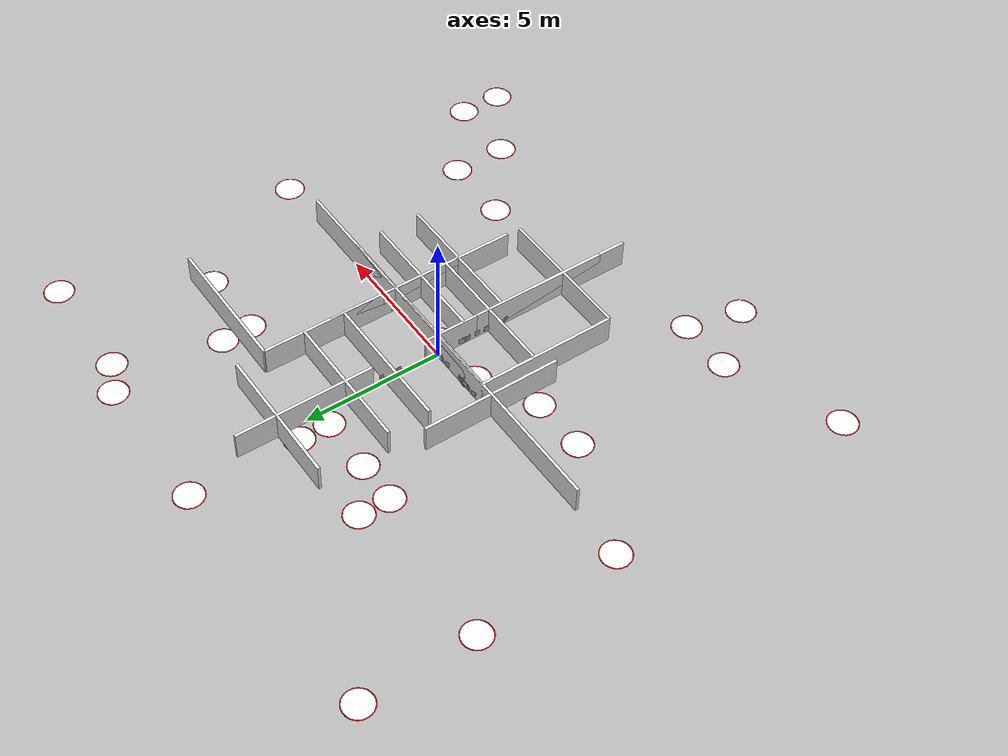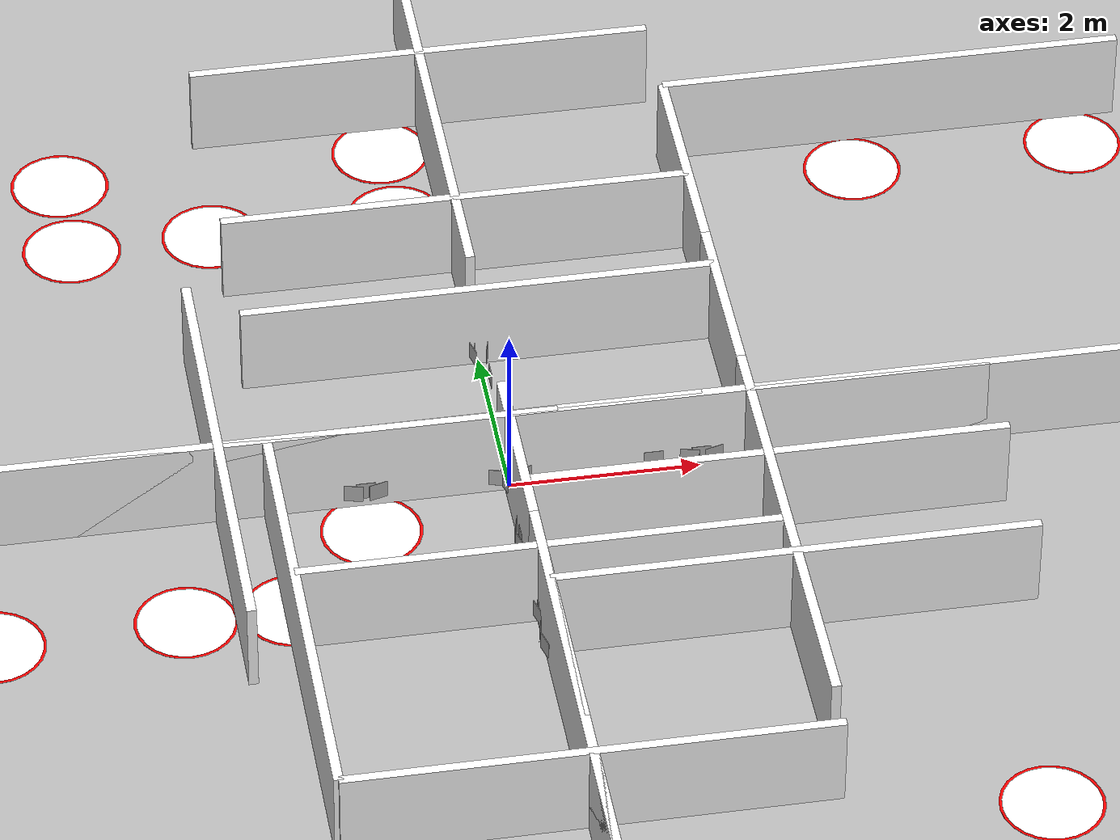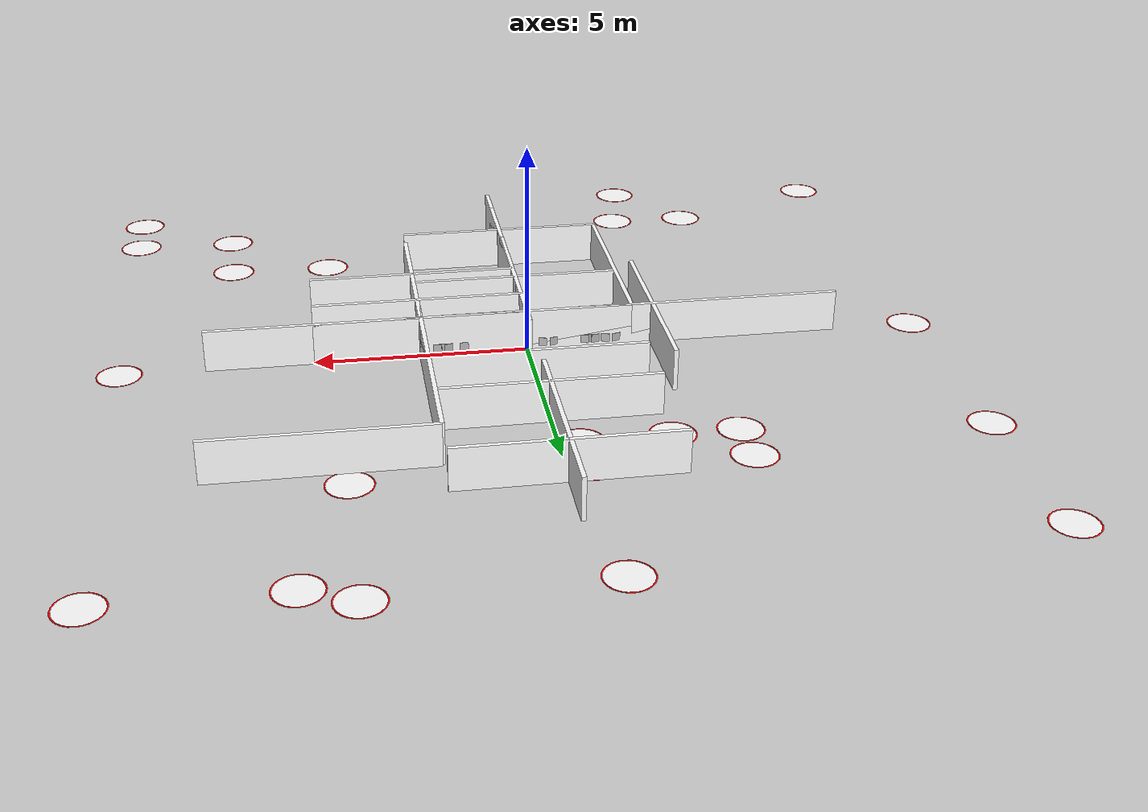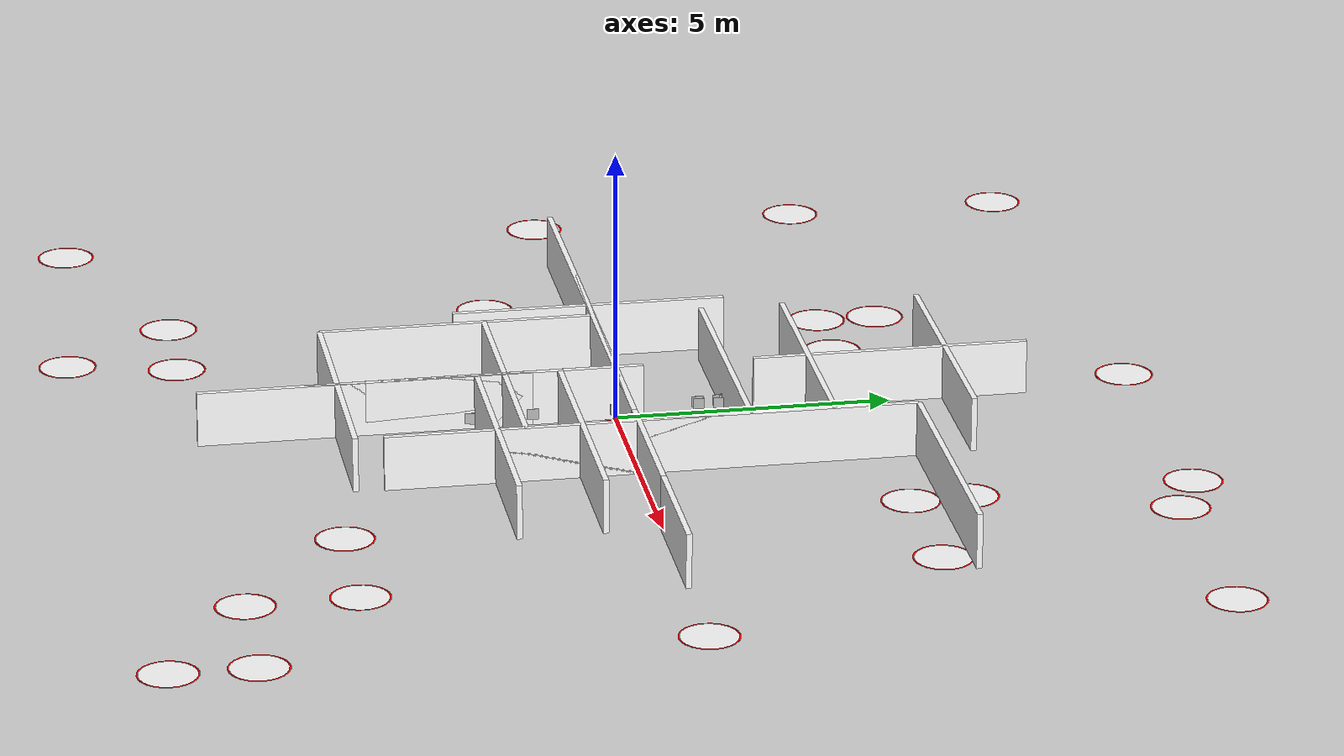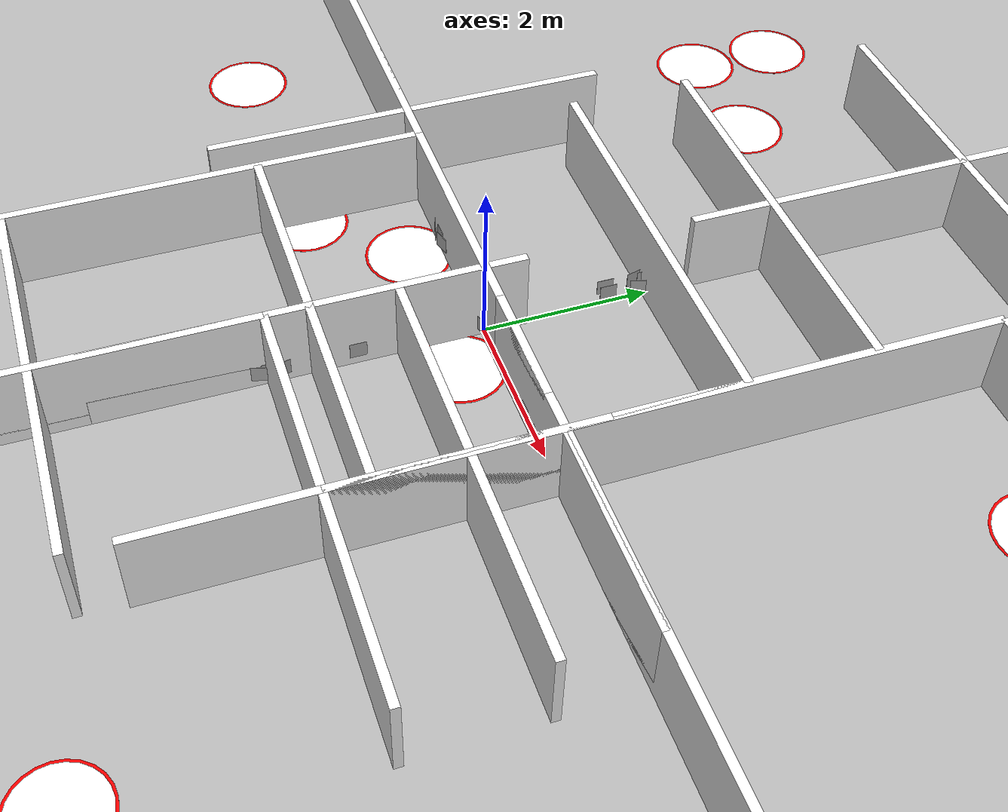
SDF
<?xml version="1.0" ?><sdf version="1.8">
  <model name="maze">
    <include>
      <uri>model://wall_2x5m</uri>
      <pose>2.5 -1 0 0 0 0</pose>
      <name>a1</name>
    </include>

    <include>
      <uri>model://wall_2x5m_</uri>
      <pose relative_to="a1">2.5 2.5 0 0 0 0</pose>
      <name>a2</name>
    </include>

    <include>
      <uri>model://wall_2x5m_</uri>
      <pose relative_to="a1">-2.5 -2.5 0 0 0 0</pose>
      <name>a3</name>
    </include>

    <include>
      <uri>model://wall_2x5m_</uri>
      <pose relative_to="a2">0 -4 0 0 0 0</pose>
      <name>a4</name>
    </include>

    <include>
      <uri>model://wall_2x5m</uri>
      <pose relative_to="a1">0 -5 0 0 0 0</pose>
      <name>a5</name>
    </include>

    <include>
      <uri>model://wall_2x5m</uri>
      <pose relative_to="a5">2.5 0 0 0 0 0</pose>
      <name>a6</name>
    </include>

    <include>
      <uri>model://wall_2x5m</uri>
      <pose relative_to="a6">0 -2 0 0 0 0</pose>
      <name>a7</name>
    </include>

    <include>
      <uri>model://wall_2x5m</uri>
      <pose relative_to="a7">-5 0 0 0 0 0</pose>
      <name>a8</name>
    </include>

    <include>
      <uri>model://wall_2x5m_</uri>
      <pose relative_to="a3">0 -2 0 0 0 0</pose>
      <name>a9</name>
    </include>

    <include>
      <uri>model://wall_2x5m</uri>
      <pose relative_to="a1">0 6 0 0 0 0</pose>
      <name>b1</name>
    </include>

    <include>
      <uri>model://wall_2x5m_</uri>
      <pose relative_to="b1">2.5 2.5 0 0 0 0</pose>
      <name>b2</name>
    </include>

    <include>
      <uri>model://wall_2x5m_</uri>
      <pose relative_to="b1">-2.5 -2.5 0 0 0 0</pose>
      <name>b3</name>
    </include>

    <include>
      <uri>model://wall_2x5m_</uri>
      <pose relative_to="b2">2.5 -2 0 0 0 0</pose>
      <name>b4</name>
    </include>

    <include>
      <uri>model://wall_2x5m_</uri>
      <pose relative_to="b4">0 -5 0 0 0 0</pose>
      <name>b5</name>
    </include>

    <include>
      <uri>model://wall_2x5m_</uri>
      <pose relative_to="b5">0 -5 0 0 0 0</pose>
      <name>b6</name>
    </include>

    <include>
      <name>c0</name>
      <pose relative_to="b1">5 5 0 0 0 0</pose>
      <uri>model://wall_2x5m</uri>
    </include>

    <include>
      <name>c1</name>
      <pose relative_to="c0">-5 0 0 0 0 0</pose>
      <uri>model://wall_2x5m</uri>
    </include>

    <include>
      <name>c2</name>
      <pose relative_to="c1">-5 0 0 0 0 0</pose>
      <uri>model://wall_2x5m</uri>
    </include>

    <include>
      <name>c3</name>
      <pose relative_to="c2">-5 0 0 0 0 0</pose>
      <uri>model://wall_2x5m</uri>
    </include>

    <include>
      <name>c4</name>
      <pose relative_to="c3">-2.5 -2.5 0 0 0 0</pose>
      <uri>model://wall_2x5m_</uri>
    </include>

    <include>
      <name>c5</name>
      <pose relative_to="c4">0 -5 0 0 0 0</pose>
      <uri>model://wall_2x5m_</uri>
    </include>

    <include>
      <name>c6</name>
      <pose relative_to="c5">0 -5 0 0 0 0</pose>
      <uri>model://wall_2x5m_</uri>
    </include>

    <include>
      <name>c7</name>
      <pose relative_to="c6">0 -5 0 0 0 0</pose>
      <uri>model://wall_2x5m_</uri>
    </include>

    <include>
      <name>c8</name>
      <pose relative_to="c7">2.5 -2.5 0 0 0 0</pose>
      <uri>model://wall_2x5m</uri>
    </include>

    <include>
      <name>c9</name>
      <pose relative_to="c8">5 0 0 0 0 0</pose>
      <uri>model://wall_2x5m</uri>
    </include>

    <include>
      <name>c10</name>
      <pose relative_to="c9">5 0 0 0 0 0</pose>
      <uri>model://wall_2x5m</uri>
    </include>

    <include>
      <name>c11</name>
      <pose relative_to="c10">5 0 0 0 0 0</pose>
      <uri>model://wall_2x5m</uri>
    </include>

    <include>
      <name>c12</name>
      <pose relative_to="c11">2.5 2.5 0 0 0 0</pose>
      <uri>model://wall_2x5m_</uri>
    </include>

    <include>
      <name>c13</name>
      <pose relative_to="c12">0 5 0 0 0 0</pose>
      <uri>model://wall_2x5m_</uri>
    </include>

    <include>
      <name>c14</name>
      <pose relative_to="c13">0 5 0 0 0 0</pose>
      <uri>model://wall_2x5m_</uri>
    </include>

    <include>
      <name>c15</name>
      <pose relative_to="c14">0 5 0 0 0 0</pose>
      <uri>model://wall_2x5m_</uri>
    </include>

    <include>
      <name>d1</name>
      <pose relative_to="b1">-5 0 0 0 0 0</pose>
      <uri>model://wall_2x5m</uri>
    </include>

    <include>
      <name>d2</name>
      <pose relative_to="c8">0 2 0 0 0 0</pose>
      <uri>model://wall_2x5m</uri>
    </include>

    <include>
      <name>d3</name>
      <pose relative_to="d2">0 3.5 0 0 0 0</pose>
      <uri>model://wall_2x5m</uri>
    </include>

    <include>
      <name>d4</name>
      <pose relative_to="d3">0 3.5 0 0 0 0</pose>
      <uri>model://wall_2x5m</uri>
    </include>

    <include>
      <name>d5</name>
      <pose relative_to="d3">2.5 0 0 0 0 0</pose>
      <uri>model://wall_2x5m_</uri>
    </include>

    <include>
      <name>d6</name>
      <pose relative_to="a8">-0.5 0 0 0 0 0</pose>
      <uri>model://wall_2x5m</uri>
    </include>

    <include>
      <name>d7</name>
      <pose relative_to="a9">-3 0 0 0 0 0</pose>
      <uri>model://wall_2x5m_</uri>
    </include>

    <include>
      <name>d8</name>
      <pose relative_to="a3">-3 0 0 0 0 0</pose>
      <uri>model://wall_2x5m_</uri>
    </include>

    <include>
      <name>d9</name>
      <pose relative_to="a1">-2 0 0 0 0 0</pose>
      <uri>model://wall_2x5m</uri>
    </include>

    <!-- TAGS ARUCO -->
<include><name>point_01</name><pose relative_to="">9.45 9.0 0 0 0 0</pose><uri>model://point</uri></include>
<include><name>point_02</name><pose relative_to="">9.45 0.0 0 0 0 0</pose><uri>model://point</uri></include>
<include><name>point_03</name><pose relative_to="">9.45 -7.5 0 0 0 0</pose><uri>model://point</uri></include>
<include><name>point_04</name><pose relative_to="">9.45 -9.0 0 0 0 0</pose><uri>model://point</uri></include>
<include><name>point_05</name><pose relative_to="">7.0 -7.45 0 0 0 0</pose><uri>model://point</uri></include>
<include><name>point_06</name><pose relative_to="">-4.0 -9.45 0 0 0 0</pose><uri>model://point</uri></include>
<include><name>point_07</name><pose relative_to="">-9.45 -9.0 0 0 0 0</pose><uri>model://point</uri></include>
<include><name>point_08</name><pose relative_to="">-3.55 -7.5 0 0 0 0</pose><uri>model://point</uri></include>
<include><name>point_09</name><pose relative_to="">-5.5 -7.45 0 0 0 0</pose><uri>model://point</uri></include>
<include><name>point_10</name><pose relative_to="">-3.55 -1.5 0 0 0 0</pose><uri>model://point</uri></include>
<include><name>point_11</name><pose relative_to="">-5.5 -1.55 0 0 0 0</pose><uri>model://point</uri></include>
<include><name>point_12</name><pose relative_to="">-4.0 4.45 0 0 0 0</pose><uri>model://point</uri></include>
<include><name>point_13</name><pose relative_to="">-2.5 4.45 0 0 0 0</pose><uri>model://point</uri></include><include><name>point_14</name><pose relative_to="">-2.45 -1.5 0 0 0 0</pose><uri>model://point</uri></include><include><name>point_15</name><pose relative_to="">-0.5 4.45 0 0 0 0</pose><uri>model://point</uri></include><include><name>point_16</name><pose relative_to="">-1.5 -0.44999999999999996 0 0 0 0</pose><uri>model://point</uri></include><include><name>point_17</name><pose relative_to="">-9.45 0.0 0 0 0 0</pose><uri>model://point</uri></include><include><name>point_18</name><pose relative_to="">-9.45 5.0 0 0 0 0</pose><uri>model://point</uri></include><include><name>point_19</name><pose relative_to="">-9.45 9.0 0 0 0 0</pose><uri>model://point</uri></include><include><name>point_20</name><pose relative_to="">-0.5 9.45 0 0 0 0</pose><uri>model://point</uri></include><include><name>point_21</name><pose relative_to="">4.45 9.5 0 0 0 0</pose><uri>model://point</uri></include><include><name>point_22</name><pose relative_to="">4.45 5.5 0 0 0 0</pose><uri>model://point</uri></include><include><name>point_23</name><pose relative_to="">-0.5 5.55 0 0 0 0</pose><uri>model://point</uri></include><include><name>point_24</name><pose relative_to="">-4.0 5.55 0 0 0 0</pose><uri>model://point</uri></include><include><name>point_25</name><pose relative_to="">0.5 -0.44999999999999996 0 0 0 0</pose><uri>model://point</uri></include><include><name>point_26</name><pose relative_to="">4.5 4.45 0 0 0 0</pose><uri>model://point</uri></include><include><name>point_27</name><pose relative_to="">6.95 4.5 0 0 0 0</pose><uri>model://point</uri></include><include><name>point_28</name><pose relative_to="">5.55 9.0 0 0 0 0</pose><uri>model://point</uri></include><include><name>point_29</name><pose relative_to="">6.95 -5.5 0 0 0 0</pose><uri>model://point</uri></include><include><name>point_30</name><pose relative_to="">4.5 -5.45 0 0 0 0</pose><uri>model://point</uri></include><include><name>tag_01_SOUTH</name><pose relative_to="c15">-0.05 1.5 0.1 0 0 3.141592653589793</pose><uri>model://ar_tags/tag_01</uri></include><include><name>tag_02_SOUTH_LEFT</name><pose relative_to="c14">-0.07588190451025208 -2.3712098898281244 0.1 0 0 2.8797932657906435</pose><uri>model://ar_tags/tag_02</uri></include><include><name>tag_02_SOUTH_RIGHT</name><pose relative_to="c14">-0.07588190451025208 -2.6287901101718756 0.1 0 0 3.4033920413889427</pose><uri>model://ar_tags/tag_02</uri></include><include><name>tag_01_EAST</name><pose relative_to="c0">1.5 -0.05 0.1 0 0 -1.5707963267948966</pose><uri>model://ar_tags/tag_01</uri></include><include><name>tag_03_SOUTH_LEFT</name><pose relative_to="c12">-0.07588190451025208 0.12879011017187578 0.1 0 0 2.8797932657906435</pose><uri>model://ar_tags/tag_03</uri></include><include><name>tag_03_SOUTH_RIGHT</name><pose relative_to="c12">-0.07588190451025208 -0.12879011017187578 0.1 0 0 3.4033920413889427</pose><uri>model://ar_tags/tag_03</uri></include><include><name>tag_04_SOUTH</name><pose relative_to="c12">-0.05 -1.5 0.1 0 0 3.141592653589793</pose><uri>model://ar_tags/tag_04</uri></include><include><name>tag_04_WEST</name><pose relative_to="c11">1.5 0.05 0.1 0 0 1.5707963267948966</pose><uri>model://ar_tags/tag_04</uri></include><include><name>tag_05_WEST_LEFT</name><pose relative_to="a7">2.1287901101718756 0.07588190451025208 0.1 0 0 1.3089969389957472</pose><uri>model://ar_tags/tag_05</uri></include><include><name>tag_05_WEST_RIGHT</name><pose relative_to="a7">1.8712098898281242 0.07588190451025208 0.1 0 0 1.832595714594046</pose><uri>model://ar_tags/tag_05</uri></include><include><name>tag_06_WEST_LEFT</name><pose relative_to="c9">-1.3712098898281242 0.07588190451025208 0.1 0 0 1.3089969389957472</pose><uri>model://ar_tags/tag_06</uri></include><include><name>tag_06_WEST_RIGHT</name><pose relative_to="c9">-1.6287901101718758 0.07588190451025208 0.1 0 0 1.832595714594046</pose><uri>model://ar_tags/tag_06</uri></include><include><name>tag_07_NORTH</name><pose relative_to="c7">0.05 -1.5 0.1 0 0 0</pose><uri>model://ar_tags/tag_07</uri></include><include><name>tag_08_SOUTH_LEFT</name><pose relative_to="d7">-0.07588190451025208 -1.8712098898281242 0.1 0 0 2.8797932657906435</pose><uri>model://ar_tags/tag_08</uri></include><include><name>tag_08_SOUTH_RIGHT</name><pose relative_to="d7">-0.07588190451025208 -2.1287901101718756 0.1 0 0 3.4033920413889427</pose><uri>model://ar_tags/tag_08</uri></include><include><name>tag_09_WEST_LEFT</name><pose relative_to="d2">2.1287901101718756 0.07588190451025208 0.1 0 0 1.3089969389957472</pose><uri>model://ar_tags/tag_09</uri></include><include><name>tag_09_WEST_RIGHT</name><pose relative_to="d2">1.8712098898281242 0.07588190451025208 0.1 0 0 1.832595714594046</pose><uri>model://ar_tags/tag_09</uri></include><include><name>tag_10_SOUTH_LEFT</name><pose relative_to="d8">-0.07588190451025208 2.1287901101718756 0.1 0 0 2.8797932657906435</pose><uri>model://ar_tags/tag_10</uri></include><include><name>tag_10_SOUTH_RIGHT</name><pose relative_to="d8">-0.07588190451025208 1.8712098898281242 0.1 0 0 3.4033920413889427</pose><uri>model://ar_tags/tag_10</uri></include><include><name>tag_11_EAST_LEFT</name><pose relative_to="d4">1.8712098898281242 -0.07588190451025208 0.1 0 0 -1.832595714594046</pose><uri>model://ar_tags/tag_11</uri></include><include><name>tag_11_EAST_RIGHT</name><pose relative_to="d4">2.1287901101718756 -0.07588190451025208 0.1 0 0 -1.3089969389957472</pose><uri>model://ar_tags/tag_11</uri></include><include><name>tag_12_EAST_LEFT</name><pose relative_to="d1">-1.6287901101718758 -0.07588190451025208 0.1 0 0 -1.832595714594046</pose><uri>model://ar_tags/tag_12</uri></include><include><name>tag_12_EAST_RIGHT</name><pose relative_to="d1">-1.3712098898281242 -0.07588190451025208 0.1 0 0 -1.3089969389957472</pose><uri>model://ar_tags/tag_12</uri></include><include><name>tag_13_EAST_LEFT</name><pose relative_to="d1">-0.12879011017187578 -0.07588190451025208 0.1 0 0 -1.832595714594046</pose><uri>model://ar_tags/tag_13</uri></include><include><name>tag_13_EAST_RIGHT</name><pose relative_to="d1">0.12879011017187578 -0.07588190451025208 0.1 0 0 -1.3089969389957472</pose><uri>model://ar_tags/tag_13</uri></include><include><name>tag_14_NORTH_LEFT</name><pose relative_to="d8">0.07588190451025208 1.8712098898281242 0.1 0 0 -0.2617993877991494</pose><uri>model://ar_tags/tag_14</uri></include><include><name>tag_14_NORTH_RIGHT</name><pose relative_to="d8">0.07588190451025208 2.1287901101718756 0.1 0 0 0.2617993877991494</pose><uri>model://ar_tags/tag_14</uri></include><include><name>tag_15_EAST</name><pose relative_to="d1">2.0 -0.05 0.1 0 0 -1.5707963267948966</pose><uri>model://ar_tags/tag_15</uri></include><include><name>tag_15_SOUTH</name><pose relative_to="b3">-0.05 2.0 0.1 0 0 3.141592653589793</pose><uri>model://ar_tags/tag_15</uri></include><include><name>tag_16_WEST_LEFT</name><pose relative_to="d9">-1.8712098898281242 0.07588190451025208 0.1 0 0 1.3089969389957472</pose><uri>model://ar_tags/tag_16</uri></include><include><name>tag_16_WEST_RIGHT</name><pose relative_to="d9">-2.1287901101718756 0.07588190451025208 0.1 0 0 1.832595714594046</pose><uri>model://ar_tags/tag_16</uri></include><include><name>tag_17_NORTH</name><pose relative_to="c5">0.05 -2.5 0.1 0 0 0</pose><uri>model://ar_tags/tag_17</uri></include><include><name>tag_17_WEST</name><pose relative_to="d4">-1.5 0.05 0.1 0 0 1.5707963267948966</pose><uri>model://ar_tags/tag_17</uri></include><include><name>tag_18_NORTH_LEFT</name><pose relative_to="c4">0.07588190451025208 -2.6287901101718756 0.1 0 0 -0.2617993877991494</pose><uri>model://ar_tags/tag_18</uri></include><include><name>tag_18_NORTH_RIGHT</name><pose relative_to="c4">0.07588190451025208 -2.3712098898281244 0.1 0 0 0.2617993877991494</pose><uri>model://ar_tags/tag_18</uri></include><include><name>tag_19_NORTH</name><pose relative_to="c4">0.05 1.5 0.1 0 0 0</pose><uri>model://ar_tags/tag_19</uri></include><include><name>tag_19_EAST</name><pose relative_to="c3">-1.5 -0.05 0.1 0 0 -1.5707963267948966</pose><uri>model://ar_tags/tag_19</uri></include><include><name>tag_20_EAST_LEFT</name><pose relative_to="c2">1.8712098898281242 -0.07588190451025208 0.1 0 0 -1.832595714594046</pose><uri>model://ar_tags/tag_20</uri></include><include><name>tag_20_EAST_RIGHT</name><pose relative_to="c2">2.1287901101718756 -0.07588190451025208 0.1 0 0 -1.3089969389957472</pose><uri>model://ar_tags/tag_20</uri></include><include><name>tag_21_SOUTH</name><pose relative_to="b2">-0.05 2.0 0.1 0 0 3.141592653589793</pose><uri>model://ar_tags/tag_21</uri></include><include><name>tag_21_EAST</name><pose relative_to="c1">2.0 -0.05 0.1 0 0 -1.5707963267948966</pose><uri>model://ar_tags/tag_21</uri></include><include><name>tag_22_SOUTH</name><pose relative_to="b2">-0.05 -2.0 0.1 0 0 3.141592653589793</pose><uri>model://ar_tags/tag_22</uri></include><include><name>tag_22_WEST</name><pose relative_to="b1">2.0 0.05 0.1 0 0 1.5707963267948966</pose><uri>model://ar_tags/tag_22</uri></include><include><name>tag_23_WEST_LEFT</name><pose relative_to="d1">2.1287901101718756 0.07588190451025208 0.1 0 0 1.3089969389957472</pose><uri>model://ar_tags/tag_23</uri></include><include><name>tag_23_WEST_RIGHT</name><pose relative_to="d1">1.8712098898281242 0.07588190451025208 0.1 0 0 1.832595714594046</pose><uri>model://ar_tags/tag_23</uri></include><include><name>tag_24_WEST_LEFT</name><pose relative_to="d1">-1.3712098898281242 0.07588190451025208 0.1 0 0 1.3089969389957472</pose><uri>model://ar_tags/tag_24</uri></include><include><name>tag_24_WEST_RIGHT</name><pose relative_to="d1">-1.6287901101718758 0.07588190451025208 0.1 0 0 1.832595714594046</pose><uri>model://ar_tags/tag_24</uri></include><include><name>tag_25_WEST_LEFT</name><pose relative_to="a1">-1.8712098898281242 0.07588190451025208 0.1 0 0 1.3089969389957472</pose><uri>model://ar_tags/tag_25</uri></include><include><name>tag_25_WEST_RIGHT</name><pose relative_to="a1">-2.1287901101718756 0.07588190451025208 0.1 0 0 1.832595714594046</pose><uri>model://ar_tags/tag_25</uri></include><include><name>tag_26_EAST_LEFT</name><pose relative_to="b1">1.8712098898281242 -0.07588190451025208 0.1 0 0 -1.832595714594046</pose><uri>model://ar_tags/tag_26</uri></include><include><name>tag_26_EAST_RIGHT</name><pose relative_to="b1">2.1287901101718756 -0.07588190451025208 0.1 0 0 -1.3089969389957472</pose><uri>model://ar_tags/tag_26</uri></include><include><name>tag_27_SOUTH_LEFT</name><pose relative_to="b4">-0.07588190451025208 -0.8712098898281242 0.1 0 0 2.8797932657906435</pose><uri>model://ar_tags/tag_27</uri></include><include><name>tag_27_SOUTH_RIGHT</name><pose relative_to="b4">-0.07588190451025208 -1.1287901101718758 0.1 0 0 3.4033920413889427</pose><uri>model://ar_tags/tag_27</uri></include><include><name>tag_28_NORTH</name><pose relative_to="b2">0.05 1.5 0.1 0 0 0</pose><uri>model://ar_tags/tag_28</uri></include><include><name>tag_28_EAST</name><pose relative_to="c0">-1.5 -0.05 0.1 0 0 -1.5707963267948966</pose><uri>model://ar_tags/tag_28</uri></include><include><name>tag_29_SOUTH</name><pose relative_to="b6">-0.05 -1.0 0.1 0 0 3.141592653589793</pose><uri>model://ar_tags/tag_29</uri></include><include><name>tag_29_WEST</name><pose relative_to="a6">2.0 0.05 0.1 0 0 1.5707963267948966</pose><uri>model://ar_tags/tag_29</uri></include><include><name>tag_30_WEST_LEFT</name><pose relative_to="a6">-0.3712098898281242 0.07588190451025208 0.1 0 0 1.3089969389957472</pose><uri>model://ar_tags/tag_30</uri></include><include><name>tag_30_WEST_RIGHT</name><pose relative_to="a6">-0.6287901101718758 0.07588190451025208 0.1 0 0 1.832595714594046</pose><uri>model://ar_tags/tag_30</uri></include></model>
</sdf>

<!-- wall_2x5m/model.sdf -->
<sdf version='1.8'>
  <model name='room_wall_2x5m'>
    <link name="link">
      <pose>0 0 0.5 0 0 1.570796326795</pose>
      <visual name="visual">
        <geometry>
          <box>
            <size>0.1 5.0 1</size>
          </box>
        </geometry>
        <material>
          <ambient>1 1 1 1</ambient>
          <diffuse>1 1 1 1</diffuse>
          <specular>1 1 1 1</specular>
        </material>
      </visual>
      <collision name="collision">
        <geometry>
          <box>
            <size>0.1 5.0 1</size>
          </box>
        </geometry>
      </collision>
    </link>
    <static>1</static>
    <allow_auto_disable>1</allow_auto_disable>
  </model>
</sdf>

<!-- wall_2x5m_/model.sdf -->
<sdf version='1.8'>
  <model name='room_wall_2x5m_'>
    <link name="link">
      <pose>0 0 0.5 0 0 0</pose>
      <visual name="visual">
        <geometry>
          <box>
            <size>0.1 5.0 1</size>
          </box>
        </geometry>
        <material>
          <ambient>1 1 1 1</ambient>
          <diffuse>1 1 1 1</diffuse>
          <specular>1 1 1 1</specular>
        </material>
      </visual>
      <collision name ="collision">
        <geometry>
           <box>
            <size>0.1 5.0 1</size>
          </box>
        </geometry>
      </collision>
    </link>
    <static>1</static>
    <allow_auto_disable>1</allow_auto_disable>
  </model>
</sdf>

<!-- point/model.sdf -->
<sdf version="1.8">
  <model name="point">
    <static>true</static>
    <pose>0 0 0.001 0 0 0</pose>
    <link name="point_link">
      <inertial>
        <mass>0.001</mass> <!-- Ajuste a massa conforme necessário -->
        <inertia>
          <ixx>1.0E-06</ixx>
          <iyy>1.0E-06</iyy>
          <izz>1.0E-06</izz>
        </inertia>
      </inertial>
      <collision name="collision">
        <geometry>
          <cylinder>
            <radius>0.33</radius> <!-- Raio total incluindo a borda -->
            <length>0.0009</length> <!-- Altura muito pequena -->
          </cylinder>
        </geometry>
      </collision>
      <!-- Cilindro externo (borda vermelha) -->
      <visual name='visual_border'>
        <geometry>
          <cylinder>
            <radius>0.53</radius> <!-- Raio total incluindo a borda -->
            <length>0.0009</length> <!-- Altura muito pequena -->
          </cylinder>
        </geometry>
        <material>
          <ambient>1 0 0 1</ambient> <!-- Cor vermelha -->
          <diffuse>1 0 0 1</diffuse>
          <specular>1 0 0 1</specular>
        </material>
      </visual>

      <!-- Cilindro interno (centro branco) -->
      <visual name='visual_center'>
        <geometry>
          <cylinder>
            <radius>0.5</radius> <!-- Raio do centro branco -->
            <length>0.001</length> <!-- Altura muito pequena -->
          </cylinder>
        </geometry>
        <material>
          <ambient>1 1 1 1</ambient> <!-- Cor branca -->
          <diffuse>1 1 1 1</diffuse>
          <specular>1 1 1 1</specular>
        </material>
      </visual>

    </link>
  </model>
</sdf>

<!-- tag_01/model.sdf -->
<sdf version="1.6">
  <model name="tag_01">
    <static>true</static>
    <link name="link">
      <visual name="visual">
        <geometry>
          <mesh>
            <uri>tag.dae</uri>
          </mesh>
        </geometry>
      </visual>
    </link>
  </model>
</sdf>

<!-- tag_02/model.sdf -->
<sdf version="1.6">
  <model name="tag_02">
    <static>true</static>
    <link name="link">
      <visual name="visual">
        <geometry>
          <mesh>
            <uri>tag.dae</uri>
          </mesh>
        </geometry>
      </visual>
    </link>
  </model>
</sdf>

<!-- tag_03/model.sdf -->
<sdf version="1.6">
  <model name="tag_03">
    <static>true</static>
    <link name="link">
      <visual name="visual">
        <geometry>
          <mesh>
            <uri>tag.dae</uri>
          </mesh>
        </geometry>
      </visual>
    </link>
  </model>
</sdf>

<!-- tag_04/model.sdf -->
<sdf version="1.6">
  <model name="tag_04">
    <static>true</static>
    <link name="link">
      <visual name="visual">
        <geometry>
          <mesh>
            <uri>tag.dae</uri>
          </mesh>
        </geometry>
      </visual>
    </link>
  </model>
</sdf>

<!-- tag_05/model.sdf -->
<sdf version="1.6">
  <model name="tag_05">
    <static>true</static>
    <link name="link">
      <visual name="visual">
        <geometry>
          <mesh>
            <uri>tag.dae</uri>
          </mesh>
        </geometry>
      </visual>
    </link>
  </model>
</sdf>

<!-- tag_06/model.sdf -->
<sdf version="1.6">
  <model name="tag_06">
    <static>true</static>
    <link name="link">
      <visual name="visual">
        <geometry>
          <mesh>
            <uri>tag.dae</uri>
          </mesh>
        </geometry>
      </visual>
    </link>
  </model>
</sdf>

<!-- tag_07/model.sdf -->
<sdf version="1.6">
  <model name="tag_07">
    <static>true</static>
    <link name="link">
      <visual name="visual">
        <geometry>
          <mesh>
            <uri>tag.dae</uri>
          </mesh>
        </geometry>
      </visual>
    </link>
  </model>
</sdf>

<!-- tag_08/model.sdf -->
<sdf version="1.6">
  <model name="tag_08">
    <static>true</static>
    <link name="link">
      <visual name="visual">
        <geometry>
          <mesh>
            <uri>tag.dae</uri>
          </mesh>
        </geometry>
      </visual>
    </link>
  </model>
</sdf>

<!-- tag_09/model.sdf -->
<sdf version="1.6">
  <model name="tag_09">
    <static>true</static>
    <link name="link">
      <visual name="visual">
        <geometry>
          <mesh>
            <uri>tag.dae</uri>
          </mesh>
        </geometry>
      </visual>
    </link>
  </model>
</sdf>

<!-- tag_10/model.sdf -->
<sdf version="1.6">
  <model name="tag_10">
    <static>true</static>
    <link name="link">
      <visual name="visual">
        <geometry>
          <mesh>
            <uri>tag.dae</uri>
          </mesh>
        </geometry>
      </visual>
    </link>
  </model>
</sdf>

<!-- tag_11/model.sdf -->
<sdf version="1.6">
  <model name="tag_11">
    <static>true</static>
    <link name="link">
      <visual name="visual">
        <geometry>
          <mesh>
            <uri>tag.dae</uri>
          </mesh>
        </geometry>
      </visual>
    </link>
  </model>
</sdf>

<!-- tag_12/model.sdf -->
<sdf version="1.6">
  <model name="tag_12">
    <static>true</static>
    <link name="link">
      <visual name="visual">
        <geometry>
          <mesh>
            <uri>tag.dae</uri>
          </mesh>
        </geometry>
      </visual>
    </link>
  </model>
</sdf>

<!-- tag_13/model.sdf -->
<sdf version="1.6">
  <model name="tag_13">
    <static>true</static>
    <link name="link">
      <visual name="visual">
        <geometry>
          <mesh>
            <uri>tag.dae</uri>
          </mesh>
        </geometry>
      </visual>
    </link>
  </model>
</sdf>

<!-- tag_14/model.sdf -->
<sdf version="1.6">
  <model name="tag_14">
    <static>true</static>
    <link name="link">
      <visual name="visual">
        <geometry>
          <mesh>
            <uri>tag.dae</uri>
          </mesh>
        </geometry>
      </visual>
    </link>
  </model>
</sdf>

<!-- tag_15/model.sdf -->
<sdf version="1.6">
  <model name="tag_15">
    <static>true</static>
    <link name="link">
      <visual name="visual">
        <geometry>
          <mesh>
            <uri>tag.dae</uri>
          </mesh>
        </geometry>
      </visual>
    </link>
  </model>
</sdf>

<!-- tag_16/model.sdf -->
<sdf version="1.6">
  <model name="tag_16">
    <static>true</static>
    <link name="link">
      <visual name="visual">
        <geometry>
          <mesh>
            <uri>tag.dae</uri>
          </mesh>
        </geometry>
      </visual>
    </link>
  </model>
</sdf>

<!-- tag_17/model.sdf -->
<sdf version="1.6">
  <model name="tag_17">
    <static>true</static>
    <link name="link">
      <visual name="visual">
        <geometry>
          <mesh>
            <uri>tag.dae</uri>
          </mesh>
        </geometry>
      </visual>
    </link>
  </model>
</sdf>

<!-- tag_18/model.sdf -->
<sdf version="1.6">
  <model name="tag_18">
    <static>true</static>
    <link name="link">
      <visual name="visual">
        <geometry>
          <mesh>
            <uri>tag.dae</uri>
          </mesh>
        </geometry>
      </visual>
    </link>
  </model>
</sdf>

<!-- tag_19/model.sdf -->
<sdf version="1.6">
  <model name="tag_19">
    <static>true</static>
    <link name="link">
      <visual name="visual">
        <geometry>
          <mesh>
            <uri>tag.dae</uri>
          </mesh>
        </geometry>
      </visual>
    </link>
  </model>
</sdf>

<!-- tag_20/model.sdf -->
<sdf version="1.6">
  <model name="tag_20">
    <static>true</static>
    <link name="link">
      <visual name="visual">
        <geometry>
          <mesh>
            <uri>tag.dae</uri>
          </mesh>
        </geometry>
      </visual>
    </link>
  </model>
</sdf>

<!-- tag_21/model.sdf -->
<sdf version="1.6">
  <model name="tag_21">
    <static>true</static>
    <link name="link">
      <visual name="visual">
        <geometry>
          <mesh>
            <uri>tag.dae</uri>
          </mesh>
        </geometry>
      </visual>
    </link>
  </model>
</sdf>

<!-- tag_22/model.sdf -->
<sdf version="1.6">
  <model name="tag_22">
    <static>true</static>
    <link name="link">
      <visual name="visual">
        <geometry>
          <mesh>
            <uri>tag.dae</uri>
          </mesh>
        </geometry>
      </visual>
    </link>
  </model>
</sdf>

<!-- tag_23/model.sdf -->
<sdf version="1.6">
  <model name="tag_23">
    <static>true</static>
    <link name="link">
      <visual name="visual">
        <geometry>
          <mesh>
            <uri>tag.dae</uri>
          </mesh>
        </geometry>
      </visual>
    </link>
  </model>
</sdf>

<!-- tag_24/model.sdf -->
<sdf version="1.6">
  <model name="tag_24">
    <static>true</static>
    <link name="link">
      <visual name="visual">
        <geometry>
          <mesh>
            <uri>tag.dae</uri>
          </mesh>
        </geometry>
      </visual>
    </link>
  </model>
</sdf>

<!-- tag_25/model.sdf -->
<sdf version="1.6">
  <model name="tag_25">
    <static>true</static>
    <link name="link">
      <visual name="visual">
        <geometry>
          <mesh>
            <uri>tag.dae</uri>
          </mesh>
        </geometry>
      </visual>
    </link>
  </model>
</sdf>

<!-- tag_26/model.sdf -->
<sdf version="1.6">
  <model name="tag_26">
    <static>true</static>
    <link name="link">
      <visual name="visual">
        <geometry>
          <mesh>
            <uri>tag.dae</uri>
          </mesh>
        </geometry>
      </visual>
    </link>
  </model>
</sdf>

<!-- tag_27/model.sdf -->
<sdf version="1.6">
  <model name="tag_27">
    <static>true</static>
    <link name="link">
      <visual name="visual">
        <geometry>
          <mesh>
            <uri>tag.dae</uri>
          </mesh>
        </geometry>
      </visual>
    </link>
  </model>
</sdf>

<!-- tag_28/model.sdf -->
<sdf version="1.6">
  <model name="tag_28">
    <static>true</static>
    <link name="link">
      <visual name="visual">
        <geometry>
          <mesh>
            <uri>tag.dae</uri>
          </mesh>
        </geometry>
      </visual>
    </link>
  </model>
</sdf>

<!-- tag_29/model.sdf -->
<sdf version="1.6">
  <model name="tag_29">
    <static>true</static>
    <link name="link">
      <visual name="visual">
        <geometry>
          <mesh>
            <uri>tag.dae</uri>
          </mesh>
        </geometry>
      </visual>
    </link>
  </model>
</sdf>

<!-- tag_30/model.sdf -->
<sdf version="1.6">
  <model name="tag_30">
    <static>true</static>
    <link name="link">
      <visual name="visual">
        <geometry>
          <mesh>
            <uri>tag.dae</uri>
          </mesh>
        </geometry>
      </visual>
    </link>
  </model>
</sdf>
